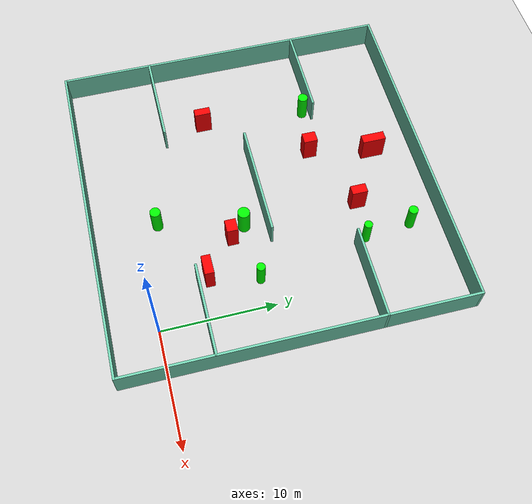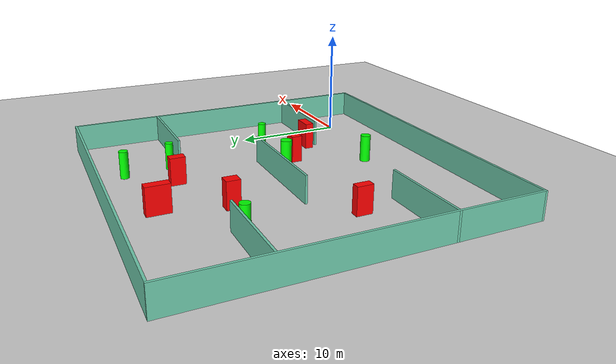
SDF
<sdf version="1.7">
 <world name="default">
  <light name="sun" type="directional">
   <pose>0 0 10 0 -0 0</pose>
   <diffuse>0.8 0.8 0.8 1</diffuse>
   <specular>0.2 0.2 0.2 1</specular>
   <attenuation>
    <range>1000</range>
    <constant>0.9</constant>
    <linear>0.01</linear>
    <quadratic>0.001</quadratic>
   </attenuation>
   <direction>-0.5 0.1 -0.9</direction>
   <spot><inner_angle>0</inner_angle><outer_angle>0</outer_angle><falloff>0</falloff></spot>
  </light>
  <model name="ground_plane">
   <static>1</static>
   <link name="link">
    <collision name="collision">
     <geometry><plane><normal>0 0 1</normal><size>100 100</size></plane></geometry>
     <surface>
      <contact><collide_bitmask>65535</collide_bitmask></contact>
      <friction><ode><mu>100</mu><mu2>50</mu2></ode></friction>
     </surface>
    </collision>
    <visual name="visual">
     <cast_shadows>0</cast_shadows>
     <geometry><plane><normal>0 0 1</normal><size>100 100</size></plane></geometry>
     <material>
      <script><uri>file://media/materials/scripts/gazebo.material</uri><name>Gazebo/Grey</name></script>
     </material>
    </visual>
   </link>
  </model>
  <gravity>0 0 -9.8</gravity>
  <magnetic_field>6e-06 2.3e-05 -4.2e-05</magnetic_field>
  <atmosphere type="adiabatic"/>
  <physics type="ode">
   <max_step_size>0.001</max_step_size>
   <real_time_factor>1</real_time_factor>
   <real_time_update_rate>1000</real_time_update_rate>
  </physics>
  <scene><ambient>0.4 0.4 0.4 1</ambient><background>0.7 0.7 0.7 1</background><shadows>1</shadows></scene>
  <spherical_coordinates>
   <surface_model>EARTH_WGS84</surface_model>
   <latitude_deg>0</latitude_deg>
   <longitude_deg>0</longitude_deg>
   <elevation>0</elevation>
   <heading_deg>0</heading_deg>
  </spherical_coordinates>
  <model name="my_base_walls">
   <link name="Wall_10">
    <collision name="Wall_10_Collision">
     <geometry><box><size>8.2 0.2 2.5</size></box></geometry>
     <pose>0 0 1.25 0 -0 0</pose>
    </collision>
    <visual name="Wall_10_Visual">
     <pose>0 0 1.25 0 -0 0</pose>
     <geometry><box><size>8.2 0.2 2.5</size></box></geometry>
     <material>
      <script><uri>file://media/materials/scripts/gazebo.material</uri><name>Gazebo/Grey</name></script>
      <ambient>0.435294 0.796078 0.67451 1</ambient>
     </material>
     <meta><layer>0</layer></meta>
    </visual>
    <pose>-11 -7 0 0 -0 0</pose>
   </link>
   <link name="Wall_12">
    <collision name="Wall_12_Collision">
     <geometry><box><size>8.2 0.2 2.5</size></box></geometry>
     <pose>0 0 1.25 0 -0 0</pose>
    </collision>
    <visual name="Wall_12_Visual">
     <pose>0 0 1.25 0 -0 0</pose>
     <geometry><box><size>8.2 0.2 2.5</size></box></geometry>
     <material>
      <script><uri>file://media/materials/scripts/gazebo.material</uri><name>Gazebo/Grey</name></script>
      <ambient>0.435294 0.796078 0.67451 1</ambient>
     </material>
     <meta><layer>0</layer></meta>
    </visual>
    <pose>-11 7 0 0 -0 0</pose>
   </link>
   <link name="Wall_14">
    <collision name="Wall_14_Collision">
     <geometry><box><size>8.2 0.2 2.5</size></box></geometry>
     <pose>0 0 1.25 0 -0 0</pose>
    </collision>
    <visual name="Wall_14_Visual">
     <pose>0 0 1.25 0 -0 0</pose>
     <geometry><box><size>8.2 0.2 2.5</size></box></geometry>
     <material>
      <script><uri>file://media/materials/scripts/gazebo.material</uri><name>Gazebo/Grey</name></script>
      <ambient>0.435294 0.796078 0.67451 1</ambient>
     </material>
     <meta><layer>0</layer></meta>
    </visual>
    <pose>11 7 0 0 -0 3.14159</pose>
   </link>
   <link name="Wall_16">
    <collision name="Wall_16_Collision">
     <geometry><box><size>10.2 0.2 2.5</size></box></geometry>
     <pose>0 0 1.25 0 -0 0</pose>
    </collision>
    <visual name="Wall_16_Visual">
     <pose>0 0 1.25 0 -0 0</pose>
     <geometry><box><size>10.2 0.2 2.5</size></box></geometry>
     <material>
      <script><uri>file://media/materials/scripts/gazebo.material</uri><name>Gazebo/Grey</name></script>
      <ambient>0.435294 0.796078 0.67451 1</ambient>
     </material>
     <meta><layer>0</layer></meta>
    </visual>
    <pose>0 0 0 0 -0 3.14159</pose>
   </link>
   <link name="Wall_2">
    <collision name="Wall_2_Collision">
     <geometry><box><size>30.2 0.2 2.5</size></box></geometry>
     <pose>0 0 1.25 0 -0 0</pose>
    </collision>
    <visual name="Wall_2_Visual">
     <pose>0 0 1.25 0 -0 0</pose>
     <geometry><box><size>30.2 0.2 2.5</size></box></geometry>
     <material>
      <script><uri>file://media/materials/scripts/gazebo.material</uri><name>Gazebo/Grey</name></script>
      <ambient>0.435294 0.796078 0.67451 1</ambient>
     </material>
     <meta><layer>0</layer></meta>
    </visual>
    <pose>0 -15 0 0 -0 3.14159</pose>
   </link>
   <link name="Wall_3">
    <collision name="Wall_3_Collision">
     <geometry><box><size>30.2 0.2 2.5</size></box></geometry>
     <pose>0 0 1.25 0 -0 0</pose>
    </collision>
    <visual name="Wall_3_Visual">
     <pose>0 0 1.25 0 -0 0</pose>
     <geometry><box><size>30.2 0.2 2.5</size></box></geometry>
     <material>
      <script><uri>file://media/materials/scripts/gazebo.material</uri><name>Gazebo/Grey</name></script>
      <ambient>0.435294 0.796078 0.67451 1</ambient>
     </material>
     <meta><layer>0</layer></meta>
    </visual>
    <pose>-15 0 0 0 -0 1.5708</pose>
   </link>
   <link name="Wall_4">
    <collision name="Wall_4_Collision">
     <geometry><box><size>30.2 0.2 2.5</size></box></geometry>
     <pose>0 0 1.25 0 -0 0</pose>
    </collision>
    <visual name="Wall_4_Visual">
     <pose>0 0 1.25 0 -0 0</pose>
     <geometry><box><size>30.2 0.2 2.5</size></box></geometry>
     <material>
      <script><uri>file://media/materials/scripts/gazebo.material</uri><name>Gazebo/Grey</name></script>
      <ambient>0.435294 0.796078 0.67451 1</ambient>
     </material>
     <meta><layer>0</layer></meta>
    </visual>
    <pose>0 15 0 0 -0 0</pose>
   </link>
   <link name="Wall_6">
    <collision name="Wall_6_Collision">
     <geometry><box><size>30.2 0.2 2.5</size></box></geometry>
     <pose>0 0 1.25 0 -0 0</pose>
    </collision>
    <visual name="Wall_6_Visual">
     <pose>0 0 1.25 0 -0 0</pose>
     <geometry><box><size>30.2 0.2 2.5</size></box></geometry>
     <material>
      <script><uri>file://media/materials/scripts/gazebo.material</uri><name>Gazebo/Grey</name></script>
      <ambient>0.435294 0.796078 0.67451 1</ambient>
     </material>
     <meta><layer>0</layer></meta>
    </visual>
    <pose>15 0 0 0 -0 1.5708</pose>
   </link>
   <link name="Wall_8">
    <collision name="Wall_8_Collision">
     <geometry><box><size>8.2 0.2 2.5</size></box></geometry>
     <pose>0 0 1.25 0 -0 0</pose>
    </collision>
    <visual name="Wall_8_Visual">
     <pose>0 0 1.25 0 -0 0</pose>
     <geometry><box><size>8.2 0.2 2.5</size></box></geometry>
     <material>
      <script><uri>file://media/materials/scripts/gazebo.material</uri><name>Gazebo/Grey</name></script>
      <ambient>0.435294 0.796078 0.67451 1</ambient>
     </material>
     <meta><layer>0</layer></meta>
    </visual>
    <pose>11 -7 0 0 -0 3.14159</pose>
   </link>
   <static>1</static>
   <pose>-11 11 0 0 -0 0</pose>
  </model>
  <model name="cylinder1">
   <static>1</static>
   <link name="link">
    <inertial>
     <mass>1</mass>
     <inertia><ixx>0.5</ixx><ixy>0</ixy><ixz>0</ixz><iyy>0.5</iyy><iyz>0</iyz><izz>1</izz></inertia>
    </inertial>
    <collision name="collision">
     <geometry><cylinder><radius>0.46140684666505305</radius><length>2.5</length></cylinder></geometry>
    </collision>
    <visual name="visual">
     <geometry><cylinder><radius>0.46140684666505305</radius><length>2.5</length></cylinder></geometry>
     <material>
      <ambient>0 1 0 1</ambient>
      <diffuse>0 1 0 1</diffuse>
      <specular>0.1 0.1 0.1 1</specular>
      <emissive>0 0 0 0</emissive>
     </material>
    </visual>
   </link>
   <pose>-9.748969073400492 1.6507038078426994 1.25 0 0 0</pose>
  </model>
  <model name="cylinder2">
   <static>1</static>
   <link name="link">
    <inertial>
     <mass>1</mass>
     <inertia><ixx>0.5</ixx><ixy>0</ixy><ixz>0</ixz><iyy>0.5</iyy><iyz>0</iyz><izz>1</izz></inertia>
    </inertial>
    <collision name="collision">
     <geometry><cylinder><radius>0.3564802045384554</radius><length>2.5</length></cylinder></geometry>
    </collision>
    <visual name="visual">
     <geometry><cylinder><radius>0.3564802045384554</radius><length>2.5</length></cylinder></geometry>
     <material>
      <ambient>0 1 0 1</ambient>
      <diffuse>0 1 0 1</diffuse>
      <specular>0.1 0.1 0.1 1</specular>
      <emissive>0 0 0 0</emissive>
     </material>
    </visual>
   </link>
   <pose>-4.244578868404998 18.985508281662867 1.25 0 0 0</pose>
  </model>
  <model name="cylinder3">
   <static>1</static>
   <link name="link">
    <inertial>
     <mass>1</mass>
     <inertia><ixx>0.5</ixx><ixy>0</ixy><ixz>0</ixz><iyy>0.5</iyy><iyz>0</iyz><izz>1</izz></inertia>
    </inertial>
    <collision name="collision">
     <geometry><cylinder><radius>0.4465824095161956</radius><length>2.5</length></cylinder></geometry>
    </collision>
    <visual name="visual">
     <geometry><cylinder><radius>0.4465824095161956</radius><length>2.5</length></cylinder></geometry>
     <material>
      <ambient>0 1 0 1</ambient>
      <diffuse>0 1 0 1</diffuse>
      <specular>0.1 0.1 0.1 1</specular>
      <emissive>0 0 0 0</emissive>
     </material>
    </visual>
   </link>
   <pose>-18.721324770117043 17.242145678479456 1.25 0 0 0</pose>
  </model>
  <model name="cylinder4">
   <static>1</static>
   <link name="link">
    <inertial>
     <mass>1</mass>
     <inertia><ixx>0.5</ixx><ixy>0</ixy><ixz>0</ixz><iyy>0.5</iyy><iyz>0</iyz><izz>1</izz></inertia>
    </inertial>
    <collision name="collision">
     <geometry><cylinder><radius>0.5287789503173321</radius><length>2.5</length></cylinder></geometry>
    </collision>
    <visual name="visual">
     <geometry><cylinder><radius>0.5287789503173321</radius><length>2.5</length></cylinder></geometry>
     <material>
      <ambient>0 1 0 1</ambient>
      <diffuse>0 1 0 1</diffuse>
      <specular>0.1 0.1 0.1 1</specular>
      <emissive>0 0 0 0</emissive>
     </material>
    </visual>
   </link>
   <pose>-7.914282851020509 8.995999051845624 1.25 0 0 0</pose>
  </model>
  <model name="cylinder5">
   <static>1</static>
   <link name="link">
    <inertial>
     <mass>1</mass>
     <inertia><ixx>0.5</ixx><ixy>0</ixy><ixz>0</ixz><iyy>0.5</iyy><iyz>0</iyz><izz>1</izz></inertia>
    </inertial>
    <collision name="collision">
     <geometry><cylinder><radius>0.403257996529753</radius><length>2.5</length></cylinder></geometry>
    </collision>
    <visual name="visual">
     <geometry><cylinder><radius>0.403257996529753</radius><length>2.5</length></cylinder></geometry>
     <material>
      <ambient>0 1 0 1</ambient>
      <diffuse>0 1 0 1</diffuse>
      <specular>0.1 0.1 0.1 1</specular>
      <emissive>0 0 0 0</emissive>
     </material>
    </visual>
   </link>
   <pose>-4.692067137607351 23.16545063665421 1.25 0 0 0</pose>
  </model>
  <model name="cylinder6">
   <static>1</static>
   <link name="link">
    <inertial>
     <mass>1</mass>
     <inertia><ixx>0.5</ixx><ixy>0</ixy><ixz>0</ixz><iyy>0.5</iyy><iyz>0</iyz><izz>1</izz></inertia>
    </inertial>
    <collision name="collision">
     <geometry><cylinder><radius>0.3696911935260318</radius><length>2.5</length></cylinder></geometry>
    </collision>
    <visual name="visual">
     <geometry><cylinder><radius>0.3696911935260318</radius><length>2.5</length></cylinder></geometry>
     <material>
      <ambient>0 1 0 1</ambient>
      <diffuse>0 1 0 1</diffuse>
      <specular>0.1 0.1 0.1 1</specular>
      <emissive>0 0 0 0</emissive>
     </material>
    </visual>
   </link>
   <pose>-2.5462362295123526 9.176065665524101 1.25 0 0 0</pose>
  </model>
  <model name="box1">
   <static>1</static>
   <link name="link">
    <inertial>
     <mass>1</mass>
     <inertia><ixx>0.083</ixx><ixy>0</ixy><ixz>0</ixz><iyy>0.083</iyy><iyz>0</iyz><izz>0.083</izz></inertia>
    </inertial>
    <collision name="collision">
     <geometry><box><size>0.8435811816661758 1.3695777064988104 2.5</size></box></geometry>
    </collision>
    <visual name="visual">
     <geometry><box><size>0.8435811816661758 1.3695777064988104 2.5</size></box></geometry>
     <material>
      <ambient>1 0 0 1</ambient>
      <diffuse>1 0 0 1</diffuse>
      <specular>0.1 0.1 0.1 1</specular>
      <emissive>0 0 0 0</emissive>
     </material>
    </visual>
    <sensor name="my_contact" type="contact">
     <contact><collision>box_collision</collision><topic>__default_topic__</topic></contact>
    </sensor>
   </link>
   <pose>-7.822734776259303 19.26637933433289 1.25 0 0 0</pose>
  </model>
  <model name="box2">
   <static>1</static>
   <link name="link">
    <inertial>
     <mass>1</mass>
     <inertia><ixx>0.083</ixx><ixy>0</ixy><ixz>0</ixz><iyy>0.083</iyy><iyz>0</iyz><izz>0.083</izz></inertia>
    </inertial>
    <collision name="collision">
     <geometry><box><size>0.8091134534299895 2.0880941346435327 2.5</size></box></geometry>
    </collision>
    <visual name="visual">
     <geometry><box><size>0.8091134534299895 2.0880941346435327 2.5</size></box></geometry>
     <material>
      <ambient>1 0 0 1</ambient>
      <diffuse>1 0 0 1</diffuse>
      <specular>0.1 0.1 0.1 1</specular>
      <emissive>0 0 0 0</emissive>
     </material>
    </visual>
    <sensor name="my_contact" type="contact">
     <contact><collision>box_collision</collision><topic>__default_topic__</topic></contact>
    </sensor>
   </link>
   <pose>-12.812260792621963 22.20205692892013 1.25 0 0 0</pose>
  </model>
  <model name="box3">
   <static>1</static>
   <link name="link">
    <inertial>
     <mass>1</mass>
     <inertia><ixx>0.083</ixx><ixy>0</ixy><ixz>0</ixz><iyy>0.083</iyy><iyz>0</iyz><izz>0.083</izz></inertia>
    </inertial>
    <collision name="collision">
     <geometry><box><size>0.7195996929926922 1.4493233501655969 2.5</size></box></geometry>
    </collision>
    <visual name="visual">
     <geometry><box><size>0.7195996929926922 1.4493233501655969 2.5</size></box></geometry>
     <material>
      <ambient>1 0 0 1</ambient>
      <diffuse>1 0 0 1</diffuse>
      <specular>0.1 0.1 0.1 1</specular>
      <emissive>0 0 0 0</emissive>
     </material>
    </visual>
    <sensor name="my_contact" type="contact">
     <contact><collision>box_collision</collision><topic>__default_topic__</topic></contact>
    </sensor>
   </link>
   <pose>-19.36867705158121 7.775167499308894 1.25 0 0 0</pose>
  </model>
  <model name="box4">
   <static>1</static>
   <link name="link">
    <inertial>
     <mass>1</mass>
     <inertia><ixx>0.083</ixx><ixy>0</ixy><ixz>0</ixz><iyy>0.083</iyy><iyz>0</iyz><izz>0.083</izz></inertia>
    </inertial>
    <collision name="collision">
     <geometry><box><size>0.995900114609405 1.228062617211799 2.5</size></box></geometry>
    </collision>
    <visual name="visual">
     <geometry><box><size>0.995900114609405 1.228062617211799 2.5</size></box></geometry>
     <material>
      <ambient>1 0 0 1</ambient>
      <diffuse>1 0 0 1</diffuse>
      <specular>0.1 0.1 0.1 1</specular>
      <emissive>0 0 0 0</emissive>
     </material>
    </visual>
    <sensor name="my_contact" type="contact">
     <contact><collision>box_collision</collision><topic>__default_topic__</topic></contact>
    </sensor>
   </link>
   <pose>-14.197324260237796 16.613521850870665 1.25 0 0 0</pose>
  </model>
  <model name="box5">
   <static>1</static>
   <link name="link">
    <inertial>
     <mass>1</mass>
     <inertia><ixx>0.083</ixx><ixy>0</ixy><ixz>0</ixz><iyy>0.083</iyy><iyz>0</iyz><izz>0.083</izz></inertia>
    </inertial>
    <collision name="collision">
     <geometry><box><size>1.7337178048974284 0.7934297844775635 2.5</size></box></geometry>
    </collision>
    <visual name="visual">
     <geometry><box><size>1.7337178048974284 0.7934297844775635 2.5</size></box></geometry>
     <material>
      <ambient>1 0 0 1</ambient>
      <diffuse>1 0 0 1</diffuse>
      <specular>0.1 0.1 0.1 1</specular>
      <emissive>0 0 0 0</emissive>
     </material>
    </visual>
    <sensor name="my_contact" type="contact">
     <contact><collision>box_collision</collision><topic>__default_topic__</topic></contact>
    </sensor>
   </link>
   <pose>-3.819031487903697 4.957938970960875 1.25 0 0 0</pose>
  </model>
  <model name="box6">
   <static>1</static>
   <link name="link">
    <inertial>
     <mass>1</mass>
     <inertia><ixx>0.083</ixx><ixy>0</ixy><ixz>0</ixz><iyy>0.083</iyy><iyz>0</iyz><izz>0.083</izz></inertia>
    </inertial>
    <collision name="collision">
     <geometry><box><size>1.1384802620165861 0.9673461053857866 2.5</size></box></geometry>
    </collision>
    <visual name="visual">
     <geometry><box><size>1.1384802620165861 0.9673461053857866 2.5</size></box></geometry>
     <material>
      <ambient>1 0 0 1</ambient>
      <diffuse>1 0 0 1</diffuse>
      <specular>0.1 0.1 0.1 1</specular>
      <emissive>0 0 0 0</emissive>
     </material>
    </visual>
    <sensor name="my_contact" type="contact">
     <contact><collision>box_collision</collision><topic>__default_topic__</topic></contact>
    </sensor>
   </link>
   <pose>-6.951394267754697 7.682160474314255 1.25 0 0 0</pose>
  </model>
 </world>
</sdf>
